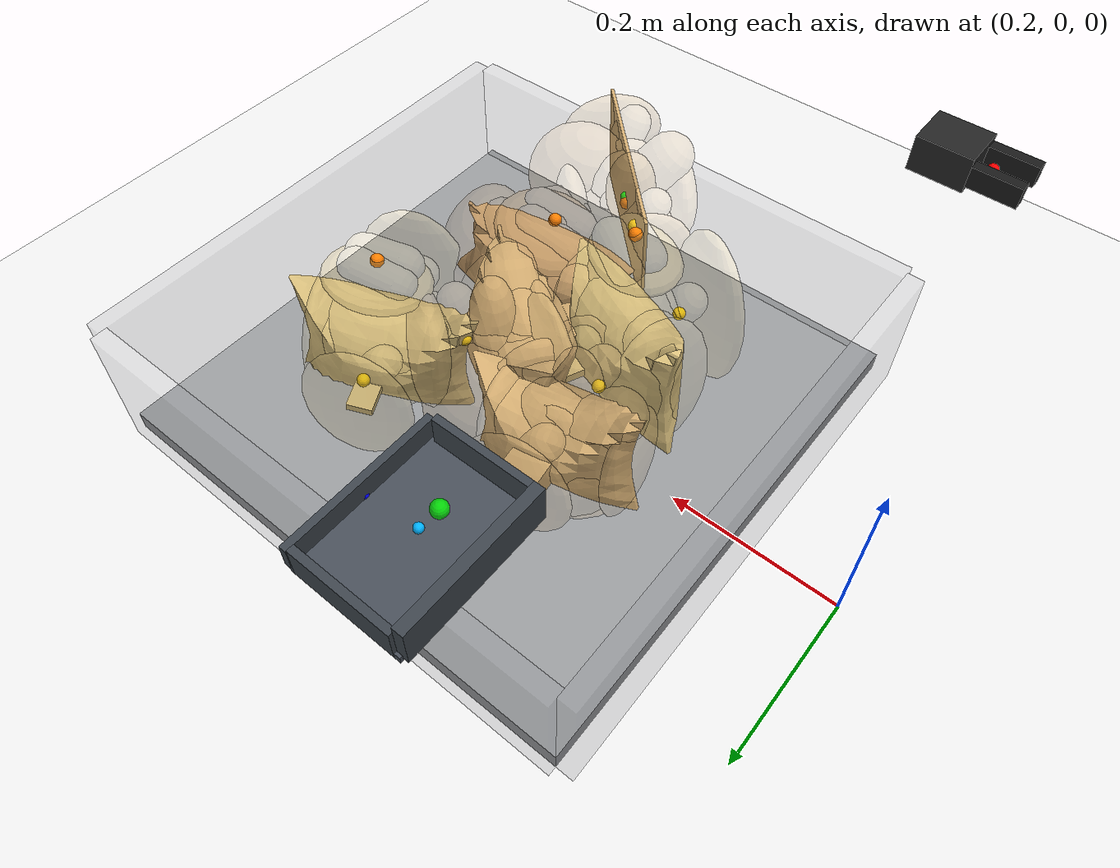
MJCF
<mujoco model="top_grasp_flat_scoop_drag_seed0">
  <compiler angle="radian" coordinate="local" inertiafromgeom="true" meshdir="D:/Michael/2025/01.Research/01.Parceldetection/16.Pybullet/bullet3-master (1)/bullet3-master/examples/pybullet/examples/DeformableTest/Sackcodex2/object"/>
  <option timestep="0.002" gravity="0 0 -9.81" integrator="implicitfast" iterations="100" tolerance="1e-8"/>
  <size memory="768M" nconmax="12000"/>

  <visual>
    <global azimuth="128" elevation="-20" offwidth="1280" offheight="720"/>
    <headlight ambient="0.34 0.34 0.34" diffuse="0.78 0.78 0.78" specular="0.15 0.15 0.15"/>
    <rgba haze="0.11 0.13 0.18 1"/>
  </visual>

  <default>
    <geom condim="4" friction="1.15 0.03 0.01" margin="0.003" solimp="0.93 0.98 0.003" solref="0.012 1"/>
    <joint damping="1.2" armature="0.002"/>
    <position kp="2500" forcelimited="true" forcerange="-420 420"/>
    <motor ctrllimited="true"/>
  </default>

  <asset>
    <mesh name="sack_0_visual_mesh" file="sack10.obj" scale="0.0723 0.0723 0.0728"/>
    <mesh name="sack_1_visual_mesh" file="sack6Apply.obj" scale="0.0713 0.0713 0.0750"/>
    <mesh name="sack_2_visual_mesh" file="sack9.obj" scale="0.0717 0.0717 0.0782"/>
    <mesh name="sack_3_visual_mesh" file="sack2.obj" scale="0.0706 0.0706 0.0711"/>
    <mesh name="sack_4_visual_mesh" file="sack10.obj" scale="0.0681 0.0681 0.0697"/>
    <mesh name="sack_5_visual_mesh" file="sack9.obj" scale="0.0733 0.0733 0.0804"/>
  </asset>

  <worldbody>
    <light name="key" pos="0.85 0.15 1.8" dir="-0.2 -0.1 -1" directional="true"/>
    <geom name="floor" type="plane" size="2 2 0.1" rgba="0.93 0.93 0.93 1"/>
    <geom name="work_pad" type="box" pos="0.62 0 0.012" size="0.30 0.30 0.012" rgba="0.60 0.61 0.62 1" friction="1.4 0.05 0.01"/>
    <geom name="corral_front" type="box" pos="0.93 0.00 0.08" size="0.010 0.30 0.08" rgba="0.55 0.55 0.58 0.22" friction="1.0 0.03 0.01"/>
    <geom name="corral_back" type="box" pos="0.31 0.00 0.08" size="0.010 0.30 0.08" rgba="0.55 0.55 0.58 0.18" friction="1.0 0.03 0.01"/>
    <geom name="corral_left" type="box" pos="0.62 0.30 0.08" size="0.30 0.010 0.08" rgba="0.55 0.55 0.58 0.14" friction="1.0 0.03 0.01"/>
    <geom name="corral_right" type="box" pos="0.62 -0.30 0.08" size="0.30 0.010 0.08" rgba="0.55 0.55 0.58 0.14" friction="1.0 0.03 0.01"/>
    <camera name="overview" pos="1.22 0.00 0.92" xyaxes="0 1 0 -0.46 0 0.88"/>

    <body name="gripper_mocap" mocap="true" pos="0.36 -0.33 0.30" quat="0.707107 0 -0.707107 0"/>
    <body name="scoop_mocap" mocap="true" pos="0.42 0.28 0.20" quat="1 0 0 0"/>

    <body name="gripper_ctrl_base" pos="0.36 -0.33 0.30">
      <inertial pos="0 0 0" mass="0.001" diaginertia="1e-6 1e-6 1e-6"/>
      <joint name="gripper_ctrl_x" type="slide" axis="1 0 0" limited="true" range="0.20 1.00"/>
      <body name="gripper_ctrl_y_body">
        <inertial pos="0 0 0" mass="0.001" diaginertia="1e-6 1e-6 1e-6"/>
        <joint name="gripper_ctrl_y" type="slide" axis="0 1 0" limited="true" range="-0.60 0.60"/>
        <body name="gripper_ctrl_z_body">
          <inertial pos="0 0 0" mass="0.001" diaginertia="1e-6 1e-6 1e-6"/>
          <joint name="gripper_ctrl_z" type="slide" axis="0 0 1" limited="true" range="0.04 0.70"/>
          <body name="gripper_ctrl_yaw_body">
            <inertial pos="0 0 0" mass="0.001" diaginertia="1e-6 1e-6 1e-6"/>
            <joint name="gripper_ctrl_yaw" type="hinge" axis="0 0 1" limited="true" range="-3.1416 3.1416"/>
            <body name="gripper_ctrl_pitch_body">
              <inertial pos="0 0 0" mass="0.001" diaginertia="1e-6 1e-6 1e-6"/>
              <joint name="gripper_ctrl_pitch" type="hinge" axis="0 1 0" limited="true" range="-3.1416 3.1416"/>
              <body name="gripper_ctrl_roll_body">
                <inertial pos="0 0 0" mass="0.001" diaginertia="1e-6 1e-6 1e-6"/>
                <joint name="gripper_ctrl_roll" type="hinge" axis="1 0 0" limited="true" range="-3.1416 3.1416"/>
              </body>
            </body>
          </body>
        </body>
      </body>
    </body>

    <body name="scoop_ctrl_base" pos="0.42 0.28 0.20">
      <inertial pos="0 0 0" mass="0.001" diaginertia="1e-6 1e-6 1e-6"/>
      <joint name="scoop_ctrl_x" type="slide" axis="1 0 0" limited="true" range="0.20 1.00"/>
      <body name="scoop_ctrl_y_body">
        <inertial pos="0 0 0" mass="0.001" diaginertia="1e-6 1e-6 1e-6"/>
        <joint name="scoop_ctrl_y" type="slide" axis="0 1 0" limited="true" range="-0.60 0.60"/>
        <body name="scoop_ctrl_z_body">
          <inertial pos="0 0 0" mass="0.001" diaginertia="1e-6 1e-6 1e-6"/>
          <joint name="scoop_ctrl_z" type="slide" axis="0 0 1" limited="true" range="0.04 0.70"/>
          <body name="scoop_ctrl_yaw_body">
            <inertial pos="0 0 0" mass="0.001" diaginertia="1e-6 1e-6 1e-6"/>
            <joint name="scoop_ctrl_yaw" type="hinge" axis="0 0 1" limited="true" range="-3.1416 3.1416"/>
            <body name="scoop_ctrl_pitch_body">
              <inertial pos="0 0 0" mass="0.001" diaginertia="1e-6 1e-6 1e-6"/>
              <joint name="scoop_ctrl_pitch" type="hinge" axis="0 1 0" limited="true" range="-3.1416 3.1416"/>
              <body name="scoop_ctrl_roll_body">
                <inertial pos="0 0 0" mass="0.001" diaginertia="1e-6 1e-6 1e-6"/>
                <joint name="scoop_ctrl_roll" type="hinge" axis="1 0 0" limited="true" range="-3.1416 3.1416"/>
              </body>
            </body>
          </body>
        </body>
      </body>
    </body>

    <body name="gripper_tool" pos="0.36 -0.33 0.30" quat="0.707107 0 -0.707107 0">
      <freejoint name="gripper_tool_free"/>
      <inertial pos="0 0 0.04" mass="0.08" diaginertia="0.0002 0.0002 0.0002"/>
      <geom name="gripper_palm" type="box" pos="0 0 0.030" size="0.020 0.026 0.030" rgba="0.14 0.14 0.14 1"/>
      <body name="left_finger_body" pos="0 0 0.072">
        <joint name="left_finger_slide" type="slide" axis="0 1 0" limited="true" range="0.010 0.040" damping="12"/>
        <geom name="left_finger_geom" type="box" pos="0 0.020 0" size="0.012 0.006 0.040" rgba="0.10 0.10 0.10 1" friction="2.2 0.05 0.01"/>
      </body>
      <body name="right_finger_body" pos="0 0 0.072">
        <joint name="right_finger_slide" type="slide" axis="0 -1 0" limited="true" range="0.010 0.040" damping="12"/>
        <geom name="right_finger_geom" type="box" pos="0 -0.020 0" size="0.012 0.006 0.040" rgba="0.10 0.10 0.10 1" friction="2.2 0.05 0.01"/>
      </body>
      <site name="gripper_pinch_site" pos="0 0 0.074" size="0.006" rgba="1 0 0 1"/>
    </body>

    <body name="scoop_tool" pos="0.42 0.28 0.20" quat="1 0 0 0">
      <freejoint name="scoop_tool_free"/>
      <inertial pos="0 0 0.02" mass="0.10" diaginertia="0.0003 0.0003 0.0003"/>
      <geom name="scoop_plate" type="box" pos="0.062 0 0" size="0.062 0.085 0.004" rgba="0.28 0.31 0.35 1" friction="1.7 0.05 0.01"/>
      <geom name="scoop_lip" type="box" pos="0.126 0 0.014" size="0.004 0.085 0.014" rgba="0.24 0.27 0.30 1" friction="1.7 0.05 0.01"/>
      <geom name="scoop_left_rail" type="box" pos="0.062 0.082 0.018" size="0.056 0.004 0.018" rgba="0.24 0.27 0.30 1"/>
      <geom name="scoop_right_rail" type="box" pos="0.062 -0.082 0.018" size="0.056 0.004 0.018" rgba="0.24 0.27 0.30 1"/>
      <geom name="scoop_backstop" type="box" pos="0.000 0 0.022" size="0.006 0.082 0.022" rgba="0.24 0.27 0.30 1"/>
      <site name="scoop_tip_site" pos="0.126 0 0.005" size="0.005" rgba="0 0 1 1"/>
      <site name="scoop_center_site" pos="0.060 0 0.020" size="0.005" rgba="0 0.7 1 1"/>
      <site name="score_overlay_site" pos="0.030 0 0.080" size="0.008" rgba="0 1 0 0.8"/>
    </body>

    <body name="sack_0" pos="0.6031 0.0117 0.1267" euler="0.0015 -0.1000 -0.5973">
      <freejoint name="sack_0_free"/>

      <geom name="sack_0_visual" type="mesh" mesh="sack_0_visual_mesh" rgba="0.820 0.670 0.440 0.92" contype="0" conaffinity="0"/>
      <site name="sack_0_center_site" pos="0 0 0.000" size="0.006" rgba="0 1 0 1"/>
      <site name="sack_0_top_site" pos="-0.0009 0.0060 -0.0016" size="0.007" rgba="1 0.5 0 1"/>
      <site name="sack_0_side_site" pos="-0.0022 0.0599 0.018" size="0.007" rgba="1 0.8 0 1"/>

      <geom name="sack_0_core_geom" type="ellipsoid" pos="0 0 0.0054" size="0.0446 0.0352 0.0622" mass="0.8153" rgba="0.820 0.670 0.440 0.12" friction="1.0 0.03 0.01"/>
      <geom name="sack_0_core_front" type="capsule" fromto="-0.0262 0 -0.0180 0.0478 0 0.0580" size="0.0279" mass="0.1941" rgba="0.820 0.670 0.440 0.10"/>
      <geom name="sack_0_core_left" type="capsule" fromto="-0.016 0.0383 -0.012 0.020 0.0644 0.054" size="0.0202" mass="0.3494" rgba="0.820 0.670 0.440 0.10"/>
      <geom name="sack_0_core_right" type="capsule" fromto="-0.016 -0.0383 -0.012 0.020 -0.0644 0.054" size="0.0181" mass="0.3494" rgba="0.820 0.670 0.440 0.10"/>

      <!-- 자루의 외형은 둥근 shell lobe로 보이게 하고, contact proxy는 반투명하게 숨긴다. -->
      <geom name="sack_0_shell_main_visual" type="ellipsoid" pos="-0.0011 0.0000 -0.0300" size="0.0677 0.0545 0.0874" rgba="0.820 0.670 0.440 0.16" contype="0" conaffinity="0"/>
      <geom name="sack_0_shell_left_visual" type="ellipsoid" pos="0.0040 0.0345 0.0020" size="0.0460 0.0259 0.0717" rgba="0.820 0.670 0.440 0.14" contype="0" conaffinity="0"/>
      <geom name="sack_0_shell_right_visual" type="ellipsoid" pos="0.0040 -0.0203 0.0000" size="0.0433 0.0185 0.0700" rgba="0.820 0.670 0.440 0.12" contype="0" conaffinity="0"/>
      <geom name="sack_0_top_left_crown_visual" type="capsule" fromto="-0.0212 0.0124 -0.0428 0.0212 0.0062 -0.0388" size="0.0204" rgba="0.820 0.670 0.440 0.14" contype="0" conaffinity="0"/>
      <geom name="sack_0_top_right_crown_visual" type="capsule" fromto="-0.0212 -0.0062 -0.0388 0.0212 -0.0124 -0.0428" size="0.0204" rgba="0.820 0.670 0.440 0.14" contype="0" conaffinity="0"/>

      <body name="sack_0_bottom_support_proxy_body" pos="-0.0004 0.0059 -0.0865">
        <joint name="sack_0_bottom_x" type="slide" axis="1 0 0" limited="true" range="-0.012 0.012" damping="18" stiffness="427.3"/>
        <joint name="sack_0_bottom_y" type="slide" axis="0 1 0" limited="true" range="-0.012 0.012" damping="18" stiffness="427.3"/>
        <joint name="sack_0_bottom_z" type="slide" axis="0 0 1" limited="true" range="-0.008 0.020" damping="24" stiffness="526.7"/>
        <geom name="sack_0_bottom_support_proxy" type="ellipsoid" size="0.0689 0.0545 0.0151" mass="0.1553" rgba="0.820 0.670 0.440 0.10" friction="1.55 0.05 0.01"/>
        <geom name="sack_0_bottom_deform_visual" type="ellipsoid" size="0.0734 0.0605 0.0196" rgba="0.820 0.670 0.440 0.22" contype="0" conaffinity="0"/>
      </body>

      <body name="sack_0_top_grasp_proxy_body" pos="-0.0022 0.0060 -0.0296">
        <joint name="sack_0_top_x" type="slide" axis="1 0 0" limited="true" range="-0.018 0.018" damping="12" stiffness="164.0"/>
        <joint name="sack_0_top_y" type="slide" axis="0 1 0" limited="true" range="-0.018 0.018" damping="12" stiffness="164.0"/>
        <joint name="sack_0_top_z" type="slide" axis="0 0 1" limited="true" range="-0.040 0.010" damping="14" stiffness="119.1"/>
        <geom name="sack_0_top_grasp_proxy" type="ellipsoid" size="0.0529 0.0345 0.0326" mass="0.1165" rgba="0.820 0.670 0.440 0.10" friction="2.2 0.05 0.01"/>
        <geom name="sack_0_top_deform_visual" type="ellipsoid" size="0.0550 0.0372 0.0411" rgba="0.820 0.670 0.440 0.36" contype="0" conaffinity="0"/>
        <geom name="sack_0_top_fold_left_visual" type="capsule" fromto="-0.0254 0.0097 0.000 0.0053 0.0028 0.0237" size="0.0147" rgba="0.820 0.670 0.440 0.26" contype="0" conaffinity="0"/>
        <geom name="sack_0_top_fold_right_visual" type="capsule" fromto="-0.0063 -0.0028 0.0237 0.0254 -0.0097 0.000" size="0.0147" rgba="0.820 0.670 0.440 0.26" contype="0" conaffinity="0"/>
      </body>

      <body name="sack_0_left_side_proxy_body" pos="-0.0004 0.0989 0.010">
        <joint name="sack_0_left_side_slide" type="slide" axis="0 -1 0" limited="true" range="-0.028 0.016" damping="16" stiffness="206.3"/>
        <geom name="sack_0_left_side_proxy" type="ellipsoid" size="0.0589 0.0201 0.0785" mass="0.1165" rgba="0.820 0.670 0.440 0.08" friction="1.25 0.04 0.01"/>
        <geom name="sack_0_left_side_deform_visual" type="ellipsoid" size="0.0607 0.0217 0.0801" rgba="0.820 0.670 0.440 0.24" contype="0" conaffinity="0"/>
      </body>

      <body name="sack_0_right_side_proxy_body" pos="-0.0004 -0.0848 0.010">
        <joint name="sack_0_right_side_slide" type="slide" axis="0 1 0" limited="true" range="-0.028 0.016" damping="16" stiffness="191.4"/>
        <geom name="sack_0_right_side_proxy" type="ellipsoid" size="0.0566 0.0157 0.0769" mass="0.1165" rgba="0.820 0.670 0.440 0.08" friction="1.25 0.04 0.01"/>
        <geom name="sack_0_right_side_deform_visual" type="ellipsoid" size="0.0583 0.0173 0.0785" rgba="0.820 0.670 0.440 0.24" contype="0" conaffinity="0"/>
      </body>

      <body name="sack_0_front_proxy_body" pos="0.0607 0.0000 0.000">
        <joint name="sack_0_front_slide" type="slide" axis="-1 0 0" limited="true" range="-0.022 0.012" damping="15" stiffness="203.7"/>
        <geom name="sack_0_front_support_proxy" type="ellipsoid" size="0.0194 0.0525 0.0745" mass="0.0971" rgba="0.820 0.670 0.440 0.08" friction="1.20 0.04 0.01"/>
        <geom name="sack_0_front_deform_visual" type="ellipsoid" size="0.0198 0.0535 0.0760" rgba="0.820 0.670 0.440 0.20" contype="0" conaffinity="0"/>
      </body>

      <body name="sack_0_back_proxy_body" pos="-0.0638 0.0000 0.000">
        <joint name="sack_0_back_slide" type="slide" axis="1 0 0" limited="true" range="-0.022 0.012" damping="15" stiffness="188.8"/>
        <geom name="sack_0_back_support_proxy" type="ellipsoid" size="0.0179 0.0525 0.0745" mass="0.0971" rgba="0.820 0.670 0.440 0.08" friction="1.20 0.04 0.01"/>
        <geom name="sack_0_back_deform_visual" type="ellipsoid" size="0.0186 0.0535 0.0760" rgba="0.820 0.670 0.440 0.20" contype="0" conaffinity="0"/>
      </body>

      <body name="sack_0_shape_proxy_body" pos="-0.0013 0.0321 0.0448">
        <joint name="sack_0_bulge_y" type="slide" axis="0 1 0" limited="true" range="-0.020 0.020" damping="8" stiffness="121.8"/>
        <joint name="sack_0_bulge_z" type="slide" axis="0 0 1" limited="true" range="-0.014 0.028" damping="8" stiffness="116.3"/>
        <geom name="sack_0_shape_proxy" type="ellipsoid" size="0.0242 0.0204 0.0486" mass="0.0777" rgba="0.820 0.670 0.440 0.10"/>
        <geom name="sack_0_shape_deform_visual" type="ellipsoid" size="0.0283 0.0245 0.0571" rgba="0.820 0.670 0.440 0.32" contype="0" conaffinity="0"/>
      </body>
    </body>

    <body name="sack_1" pos="0.6619 -0.0948 0.1107" euler="-0.1181 -0.3166 0.3300">
      <freejoint name="sack_1_free"/>

      <geom name="sack_1_visual" type="mesh" mesh="sack_1_visual_mesh" rgba="0.760 0.600 0.400 0.92" contype="0" conaffinity="0"/>
      <site name="sack_1_center_site" pos="0 0 0.000" size="0.006" rgba="0 1 0 1"/>
      <site name="sack_1_top_site" pos="0.0018 0.0051 0.1143" size="0.007" rgba="1 0.5 0 1"/>
      <site name="sack_1_side_site" pos="0.0046 0.0992 0.018" size="0.007" rgba="1 0.8 0 1"/>

      <geom name="sack_1_core_geom" type="ellipsoid" pos="0 0 0.0058" size="0.0437 0.0349 0.0757" mass="0.8516" rgba="0.760 0.600 0.400 0.12" friction="1.0 0.03 0.01"/>
      <geom name="sack_1_core_front" type="capsule" fromto="-0.0194 0 -0.0180 0.0546 0 0.0580" size="0.0294" mass="0.2028" rgba="0.760 0.600 0.400 0.10"/>
      <geom name="sack_1_core_left" type="capsule" fromto="-0.016 0.0688 -0.012 0.020 0.1341 0.054" size="0.0211" mass="0.3650" rgba="0.760 0.600 0.400 0.10"/>
      <geom name="sack_1_core_right" type="capsule" fromto="-0.016 -0.0688 -0.012 0.020 -0.1341 0.054" size="0.0188" mass="0.3650" rgba="0.760 0.600 0.400 0.10"/>

      <!-- 자루의 외형은 둥근 shell lobe로 보이게 하고, contact proxy는 반투명하게 숨긴다. -->
      <geom name="sack_1_shell_main_visual" type="ellipsoid" pos="0.0023 -0.0015 -0.0052" size="0.0721 0.0660 0.0890" rgba="0.760 0.600 0.400 0.16" contype="0" conaffinity="0"/>
      <geom name="sack_1_shell_left_visual" type="ellipsoid" pos="0.0040 0.1011 0.0020" size="0.0490 0.0738 0.0730" rgba="0.760 0.600 0.400 0.14" contype="0" conaffinity="0"/>
      <geom name="sack_1_shell_right_visual" type="ellipsoid" pos="0.0040 -0.0538 0.0000" size="0.0461 0.0403 0.0712" rgba="0.760 0.600 0.400 0.12" contype="0" conaffinity="0"/>
      <geom name="sack_1_top_left_crown_visual" type="capsule" fromto="-0.0230 0.0172 0.0926 0.0230 0.0086 0.0966" size="0.0207" rgba="0.760 0.600 0.400 0.14" contype="0" conaffinity="0"/>
      <geom name="sack_1_top_right_crown_visual" type="capsule" fromto="-0.0230 -0.0086 0.0966 0.0230 -0.0172 0.0926" size="0.0207" rgba="0.760 0.600 0.400 0.14" contype="0" conaffinity="0"/>

      <body name="sack_1_bottom_support_proxy_body" pos="0.0008 -0.0105 -0.0879">
        <joint name="sack_1_bottom_x" type="slide" axis="1 0 0" limited="true" range="-0.012 0.012" damping="18" stiffness="472.3"/>
        <joint name="sack_1_bottom_y" type="slide" axis="0 1 0" limited="true" range="-0.012 0.012" damping="18" stiffness="472.3"/>
        <joint name="sack_1_bottom_z" type="slide" axis="0 0 1" limited="true" range="-0.008 0.020" damping="24" stiffness="581.7"/>
        <geom name="sack_1_bottom_support_proxy" type="ellipsoid" size="0.0731 0.0676 0.0136" mass="0.1622" rgba="0.760 0.600 0.400 0.10" friction="1.55 0.05 0.01"/>
        <geom name="sack_1_bottom_deform_visual" type="ellipsoid" size="0.0779 0.0736 0.0177" rgba="0.760 0.600 0.400 0.22" contype="0" conaffinity="0"/>
      </body>

      <body name="sack_1_top_grasp_proxy_body" pos="0.0046 0.0049 0.0863">
        <joint name="sack_1_top_x" type="slide" axis="1 0 0" limited="true" range="-0.018 0.018" damping="12" stiffness="181.5"/>
        <joint name="sack_1_top_y" type="slide" axis="0 1 0" limited="true" range="-0.018 0.018" damping="12" stiffness="181.5"/>
        <joint name="sack_1_top_z" type="slide" axis="0 0 1" limited="true" range="-0.040 0.010" damping="14" stiffness="134.1"/>
        <geom name="sack_1_top_grasp_proxy" type="ellipsoid" size="0.0575 0.0476 0.0166" mass="0.1217" rgba="0.760 0.600 0.400 0.10" friction="2.2 0.05 0.01"/>
        <geom name="sack_1_top_deform_visual" type="ellipsoid" size="0.0598 0.0515 0.0216" rgba="0.760 0.600 0.400 0.36" contype="0" conaffinity="0"/>
        <geom name="sack_1_top_fold_left_visual" type="capsule" fromto="-0.0276 0.0133 0.000 0.0057 0.0038 0.0131" size="0.0149" rgba="0.760 0.600 0.400 0.26" contype="0" conaffinity="0"/>
        <geom name="sack_1_top_fold_right_visual" type="capsule" fromto="-0.0069 -0.0038 0.0131 0.0276 -0.0133 0.000" size="0.0149" rgba="0.760 0.600 0.400 0.26" contype="0" conaffinity="0"/>
      </body>

      <body name="sack_1_left_side_proxy_body" pos="0.0007 0.1787 0.010">
        <joint name="sack_1_left_side_slide" type="slide" axis="0 -1 0" limited="true" range="-0.028 0.016" damping="16" stiffness="237.6"/>
        <geom name="sack_1_left_side_proxy" type="ellipsoid" size="0.0635 0.0593 0.0799" mass="0.1217" rgba="0.760 0.600 0.400 0.08" friction="1.25 0.04 0.01"/>
        <geom name="sack_1_left_side_deform_visual" type="ellipsoid" size="0.0654 0.0641 0.0815" rgba="0.760 0.600 0.400 0.24" contype="0" conaffinity="0"/>
      </body>

      <body name="sack_1_right_side_proxy_body" pos="0.0007 -0.1314 0.010">
        <joint name="sack_1_right_side_slide" type="slide" axis="0 1 0" limited="true" range="-0.028 0.016" damping="16" stiffness="220.2"/>
        <geom name="sack_1_right_side_proxy" type="ellipsoid" size="0.0609 0.0463 0.0783" mass="0.1217" rgba="0.760 0.600 0.400 0.08" friction="1.25 0.04 0.01"/>
        <geom name="sack_1_right_side_deform_visual" type="ellipsoid" size="0.0628 0.0510 0.0799" rgba="0.760 0.600 0.400 0.24" contype="0" conaffinity="0"/>
      </body>

      <body name="sack_1_front_proxy_body" pos="0.0721 -0.0005 0.000">
        <joint name="sack_1_front_slide" type="slide" axis="-1 0 0" limited="true" range="-0.022 0.012" damping="15" stiffness="226.2"/>
        <geom name="sack_1_front_support_proxy" type="ellipsoid" size="0.0455 0.0656 0.0759" mass="0.1014" rgba="0.760 0.600 0.400 0.08" friction="1.20 0.04 0.01"/>
        <geom name="sack_1_front_deform_visual" type="ellipsoid" size="0.0464 0.0670 0.0775" rgba="0.760 0.600 0.400 0.20" contype="0" conaffinity="0"/>
      </body>

      <body name="sack_1_back_proxy_body" pos="-0.0656 -0.0005 0.000">
        <joint name="sack_1_back_slide" type="slide" axis="1 0 0" limited="true" range="-0.022 0.012" damping="15" stiffness="208.8"/>
        <geom name="sack_1_back_support_proxy" type="ellipsoid" size="0.0419 0.0656 0.0759" mass="0.1014" rgba="0.760 0.600 0.400 0.08" friction="1.20 0.04 0.01"/>
        <geom name="sack_1_back_deform_visual" type="ellipsoid" size="0.0437 0.0670 0.0775" rgba="0.760 0.600 0.400 0.20" contype="0" conaffinity="0"/>
      </body>

      <body name="sack_1_shape_proxy_body" pos="0.0028 0.1179 0.0318">
        <joint name="sack_1_bulge_y" type="slide" axis="0 1 0" limited="true" range="-0.020 0.020" damping="8" stiffness="91.8"/>
        <joint name="sack_1_bulge_z" type="slide" axis="0 0 1" limited="true" range="-0.014 0.028" damping="8" stiffness="93.8"/>
        <geom name="sack_1_shape_proxy" type="ellipsoid" size="0.0253 0.0225 0.0326" mass="0.0811" rgba="0.760 0.600 0.400 0.10"/>
        <geom name="sack_1_shape_deform_visual" type="ellipsoid" size="0.0296 0.0269 0.0376" rgba="0.760 0.600 0.400 0.32" contype="0" conaffinity="0"/>
      </body>
    </body>

    <body name="sack_2" pos="0.5145 -0.0584 0.1161" euler="0.0118 0.0476 2.7196">
      <freejoint name="sack_2_free"/>

      <geom name="sack_2_visual" type="mesh" mesh="sack_2_visual_mesh" rgba="0.840 0.740 0.480 0.92" contype="0" conaffinity="0"/>
      <site name="sack_2_center_site" pos="0 0 0.000" size="0.006" rgba="0 1 0 1"/>
      <site name="sack_2_top_site" pos="0.0004 0.0061 0.1529" size="0.007" rgba="1 0.5 0 1"/>
      <site name="sack_2_side_site" pos="0.0011 0.0645 0.018" size="0.007" rgba="1 0.8 0 1"/>

      <geom name="sack_2_core_geom" type="ellipsoid" pos="0 0 0.0059" size="0.0517 0.0438 0.0895" mass="0.9891" rgba="0.840 0.740 0.480 0.12" friction="1.0 0.03 0.01"/>
      <geom name="sack_2_core_front" type="capsule" fromto="-0.0229 0 -0.0180 0.0511 0 0.0580" size="0.0307" mass="0.2355" rgba="0.840 0.740 0.480 0.10"/>
      <geom name="sack_2_core_left" type="capsule" fromto="-0.016 0.0370 -0.012 0.020 0.0613 0.054" size="0.0201" mass="0.4239" rgba="0.840 0.740 0.480 0.10"/>
      <geom name="sack_2_core_right" type="capsule" fromto="-0.016 -0.0370 -0.012 0.020 -0.0613 0.054" size="0.0181" mass="0.4239" rgba="0.840 0.740 0.480 0.10"/>

      <!-- 자루의 외형은 둥근 shell lobe로 보이게 하고, contact proxy는 반투명하게 숨긴다. -->
      <geom name="sack_2_shell_main_visual" type="ellipsoid" pos="0.0005 0.0001 -0.0006" size="0.0687 0.0587 0.1034" rgba="0.840 0.740 0.480 0.16" contype="0" conaffinity="0"/>
      <geom name="sack_2_shell_left_visual" type="ellipsoid" pos="0.0040 0.0315 0.0020" size="0.0467 0.0238 0.0848" rgba="0.840 0.740 0.480 0.14" contype="0" conaffinity="0"/>
      <geom name="sack_2_shell_right_visual" type="ellipsoid" pos="0.0040 -0.0188 0.0000" size="0.0440 0.0175 0.0828" rgba="0.840 0.740 0.480 0.12" contype="0" conaffinity="0"/>
      <geom name="sack_2_top_left_crown_visual" type="capsule" fromto="-0.0219 0.0145 0.1348 0.0219 0.0072 0.1388" size="0.0196" rgba="0.840 0.740 0.480 0.14" contype="0" conaffinity="0"/>
      <geom name="sack_2_top_right_crown_visual" type="capsule" fromto="-0.0219 -0.0072 0.1388 0.0219 -0.0145 0.1348" size="0.0196" rgba="0.840 0.740 0.480 0.14" contype="0" conaffinity="0"/>

      <body name="sack_2_bottom_support_proxy_body" pos="0.0002 -0.0058 -0.1061">
        <joint name="sack_2_bottom_x" type="slide" axis="1 0 0" limited="true" range="-0.012 0.012" damping="18" stiffness="510.0"/>
        <joint name="sack_2_bottom_y" type="slide" axis="0 1 0" limited="true" range="-0.012 0.012" damping="18" stiffness="510.0"/>
        <joint name="sack_2_bottom_z" type="slide" axis="0 0 1" limited="true" range="-0.008 0.020" damping="24" stiffness="627.7"/>
        <geom name="sack_2_bottom_support_proxy" type="ellipsoid" size="0.0705 0.0603 0.0123" mass="0.1884" rgba="0.840 0.740 0.480 0.10" friction="1.55 0.05 0.01"/>
        <geom name="sack_2_bottom_deform_visual" type="ellipsoid" size="0.0751 0.0663 0.0160" rgba="0.840 0.740 0.480 0.22" contype="0" conaffinity="0"/>
      </body>

      <body name="sack_2_top_grasp_proxy_body" pos="0.0011 0.0061 0.1249">
        <joint name="sack_2_top_x" type="slide" axis="1 0 0" limited="true" range="-0.018 0.018" damping="12" stiffness="196.1"/>
        <joint name="sack_2_top_y" type="slide" axis="0 1 0" limited="true" range="-0.018 0.018" damping="12" stiffness="196.1"/>
        <joint name="sack_2_top_z" type="slide" axis="0 0 1" limited="true" range="-0.040 0.010" damping="14" stiffness="146.7"/>
        <geom name="sack_2_top_grasp_proxy" type="ellipsoid" size="0.0546 0.0403 0.0137" mass="0.1413" rgba="0.840 0.740 0.480 0.10" friction="2.2 0.05 0.01"/>
        <geom name="sack_2_top_deform_visual" type="ellipsoid" size="0.0568 0.0435 0.0180" rgba="0.840 0.740 0.480 0.36" contype="0" conaffinity="0"/>
        <geom name="sack_2_top_fold_left_visual" type="capsule" fromto="-0.0262 0.0113 0.000 0.0055 0.0032 0.0111" size="0.0141" rgba="0.840 0.740 0.480 0.26" contype="0" conaffinity="0"/>
        <geom name="sack_2_top_fold_right_visual" type="capsule" fromto="-0.0066 -0.0032 0.0111 0.0262 -0.0113 0.000" size="0.0141" rgba="0.840 0.740 0.480 0.26" contype="0" conaffinity="0"/>
      </body>

      <body name="sack_2_left_side_proxy_body" pos="0.0002 0.1018 0.010">
        <joint name="sack_2_left_side_slide" type="slide" axis="0 -1 0" limited="true" range="-0.028 0.016" damping="16" stiffness="263.1"/>
        <geom name="sack_2_left_side_proxy" type="ellipsoid" size="0.0606 0.0184 0.0981" mass="0.1413" rgba="0.840 0.740 0.480 0.08" friction="1.25 0.04 0.01"/>
        <geom name="sack_2_left_side_deform_visual" type="ellipsoid" size="0.0624 0.0198 0.1001" rgba="0.840 0.740 0.480 0.24" contype="0" conaffinity="0"/>
      </body>

      <body name="sack_2_right_side_proxy_body" pos="0.0002 -0.0890 0.010">
        <joint name="sack_2_right_side_slide" type="slide" axis="0 1 0" limited="true" range="-0.028 0.016" damping="16" stiffness="243.6"/>
        <geom name="sack_2_right_side_proxy" type="ellipsoid" size="0.0582 0.0143 0.0962" mass="0.1413" rgba="0.840 0.740 0.480 0.08" friction="1.25 0.04 0.01"/>
        <geom name="sack_2_right_side_deform_visual" type="ellipsoid" size="0.0600 0.0158 0.0981" rgba="0.840 0.740 0.480 0.24" contype="0" conaffinity="0"/>
      </body>

      <body name="sack_2_front_proxy_body" pos="0.0657 0.0000 0.000">
        <joint name="sack_2_front_slide" type="slide" axis="-1 0 0" limited="true" range="-0.022 0.012" damping="15" stiffness="245.0"/>
        <geom name="sack_2_front_support_proxy" type="ellipsoid" size="0.0182 0.0583 0.0941" mass="0.1177" rgba="0.840 0.740 0.480 0.08" friction="1.20 0.04 0.01"/>
        <geom name="sack_2_front_deform_visual" type="ellipsoid" size="0.0186 0.0594 0.0960" rgba="0.840 0.740 0.480 0.20" contype="0" conaffinity="0"/>
      </body>

      <body name="sack_2_back_proxy_body" pos="-0.0642 0.0000 0.000">
        <joint name="sack_2_back_slide" type="slide" axis="1 0 0" limited="true" range="-0.022 0.012" damping="15" stiffness="225.5"/>
        <geom name="sack_2_back_support_proxy" type="ellipsoid" size="0.0168 0.0583 0.0941" mass="0.1177" rgba="0.840 0.740 0.480 0.08" friction="1.20 0.04 0.01"/>
        <geom name="sack_2_back_deform_visual" type="ellipsoid" size="0.0175 0.0594 0.0960" rgba="0.840 0.740 0.480 0.20" contype="0" conaffinity="0"/>
      </body>

      <body name="sack_2_shape_proxy_body" pos="0.0006 0.0282 0.0209">
        <joint name="sack_2_bulge_y" type="slide" axis="0 1 0" limited="true" range="-0.020 0.020" damping="8" stiffness="66.7"/>
        <joint name="sack_2_bulge_z" type="slide" axis="0 0 1" limited="true" range="-0.014 0.028" damping="8" stiffness="75.0"/>
        <geom name="sack_2_shape_proxy" type="ellipsoid" size="0.0242 0.0203 0.0297" mass="0.0942" rgba="0.840 0.740 0.480 0.10"/>
        <geom name="sack_2_shape_deform_visual" type="ellipsoid" size="0.0282 0.0244 0.0340" rgba="0.840 0.740 0.480 0.32" contype="0" conaffinity="0"/>
      </body>
    </body>

    <body name="sack_3" pos="0.6337 -0.2162 0.1512" euler="-0.1246 -0.0490 -2.3234">
      <freejoint name="sack_3_free"/>

      <geom name="sack_3_visual" type="mesh" mesh="sack_3_visual_mesh" rgba="0.820 0.670 0.440 0.92" contype="0" conaffinity="0"/>
      <site name="sack_3_center_site" pos="0 0 0.000" size="0.006" rgba="0 1 0 1"/>
      <site name="sack_3_top_site" pos="-0.0004 -0.0066 -0.0030" size="0.007" rgba="1 0.5 0 1"/>
      <site name="sack_3_side_site" pos="-0.0011 -0.0592 0.018" size="0.007" rgba="1 0.8 0 1"/>

      <geom name="sack_3_core_geom" type="ellipsoid" pos="0 0 0.0055" size="0.0445 0.0351 0.0621" mass="0.7015" rgba="0.820 0.670 0.440 0.12" friction="1.0 0.03 0.01"/>
      <geom name="sack_3_core_front" type="capsule" fromto="-0.0251 0 -0.0180 0.0489 0 0.0580" size="0.0279" mass="0.1670" rgba="0.820 0.670 0.440 0.10"/>
      <geom name="sack_3_core_left" type="capsule" fromto="-0.016 0.0377 -0.012 0.020 0.0630 0.054" size="0.0202" mass="0.3007" rgba="0.820 0.670 0.440 0.10"/>
      <geom name="sack_3_core_right" type="capsule" fromto="-0.016 -0.0377 -0.012 0.020 -0.0630 0.054" size="0.0181" mass="0.3007" rgba="0.820 0.670 0.440 0.10"/>

      <!-- 자루의 외형은 둥근 shell lobe로 보이게 하고, contact proxy는 반투명하게 숨긴다. -->
      <geom name="sack_3_shell_main_visual" type="ellipsoid" pos="-0.0005 -0.0010 -0.0279" size="0.0677 0.0544 0.0681" rgba="0.820 0.670 0.440 0.16" contype="0" conaffinity="0"/>
      <geom name="sack_3_shell_left_visual" type="ellipsoid" pos="0.0040 0.0309 0.0020" size="0.0460 0.0249 0.0559" rgba="0.820 0.670 0.440 0.14" contype="0" conaffinity="0"/>
      <geom name="sack_3_shell_right_visual" type="ellipsoid" pos="0.0040 -0.0218 0.0000" size="0.0433 0.0181 0.0545" rgba="0.820 0.670 0.440 0.12" contype="0" conaffinity="0"/>
      <geom name="sack_3_top_left_crown_visual" type="capsule" fromto="-0.0212 0.0124 -0.0424 0.0212 0.0062 -0.0384" size="0.0204" rgba="0.820 0.670 0.440 0.14" contype="0" conaffinity="0"/>
      <geom name="sack_3_top_right_crown_visual" type="capsule" fromto="-0.0212 -0.0062 -0.0384 0.0212 -0.0124 -0.0424" size="0.0204" rgba="0.820 0.670 0.440 0.14" contype="0" conaffinity="0"/>

      <body name="sack_3_bottom_support_proxy_body" pos="-0.0002 0.0154 -0.0639">
        <joint name="sack_3_bottom_x" type="slide" axis="1 0 0" limited="true" range="-0.012 0.012" damping="18" stiffness="426.6"/>
        <joint name="sack_3_bottom_y" type="slide" axis="0 1 0" limited="true" range="-0.012 0.012" damping="18" stiffness="426.6"/>
        <joint name="sack_3_bottom_z" type="slide" axis="0 0 1" limited="true" range="-0.008 0.020" damping="24" stiffness="525.9"/>
        <geom name="sack_3_bottom_support_proxy" type="ellipsoid" size="0.0689 0.0544 0.0151" mass="0.1336" rgba="0.820 0.670 0.440 0.10" friction="1.55 0.05 0.01"/>
        <geom name="sack_3_bottom_deform_visual" type="ellipsoid" size="0.0734 0.0604 0.0196" rgba="0.820 0.670 0.440 0.22" contype="0" conaffinity="0"/>
      </body>

      <body name="sack_3_top_grasp_proxy_body" pos="-0.0011 -0.0067 -0.0310">
        <joint name="sack_3_top_x" type="slide" axis="1 0 0" limited="true" range="-0.018 0.018" damping="12" stiffness="163.7"/>
        <joint name="sack_3_top_y" type="slide" axis="0 1 0" limited="true" range="-0.018 0.018" damping="12" stiffness="163.7"/>
        <joint name="sack_3_top_z" type="slide" axis="0 0 1" limited="true" range="-0.040 0.010" damping="14" stiffness="118.9"/>
        <geom name="sack_3_top_grasp_proxy" type="ellipsoid" size="0.0529 0.0344 0.0312" mass="0.1002" rgba="0.820 0.670 0.440 0.10" friction="2.2 0.05 0.01"/>
        <geom name="sack_3_top_deform_visual" type="ellipsoid" size="0.0550 0.0371 0.0395" rgba="0.820 0.670 0.440 0.36" contype="0" conaffinity="0"/>
        <geom name="sack_3_top_fold_left_visual" type="capsule" fromto="-0.0254 0.0096 0.000 0.0053 0.0027 0.0228" size="0.0147" rgba="0.820 0.670 0.440 0.26" contype="0" conaffinity="0"/>
        <geom name="sack_3_top_fold_right_visual" type="capsule" fromto="-0.0063 -0.0027 0.0228 0.0254 -0.0096 0.000" size="0.0147" rgba="0.820 0.670 0.440 0.26" contype="0" conaffinity="0"/>
      </body>

      <body name="sack_3_left_side_proxy_body" pos="-0.0002 0.0952 0.010">
        <joint name="sack_3_left_side_slide" type="slide" axis="0 -1 0" limited="true" range="-0.028 0.016" damping="16" stiffness="205.9"/>
        <geom name="sack_3_left_side_proxy" type="ellipsoid" size="0.0589 0.0193 0.0559" mass="0.1002" rgba="0.820 0.670 0.440 0.08" friction="1.25 0.04 0.01"/>
        <geom name="sack_3_left_side_deform_visual" type="ellipsoid" size="0.0607 0.0208 0.0570" rgba="0.820 0.670 0.440 0.24" contype="0" conaffinity="0"/>
      </body>

      <body name="sack_3_right_side_proxy_body" pos="-0.0002 -0.0861 0.010">
        <joint name="sack_3_right_side_slide" type="slide" axis="0 1 0" limited="true" range="-0.028 0.016" damping="16" stiffness="191.1"/>
        <geom name="sack_3_right_side_proxy" type="ellipsoid" size="0.0565 0.0151 0.0548" mass="0.1002" rgba="0.820 0.670 0.440 0.08" friction="1.25 0.04 0.01"/>
        <geom name="sack_3_right_side_deform_visual" type="ellipsoid" size="0.0583 0.0166 0.0559" rgba="0.820 0.670 0.440 0.24" contype="0" conaffinity="0"/>
      </body>

      <body name="sack_3_front_proxy_body" pos="0.0618 -0.0003 0.000">
        <joint name="sack_3_front_slide" type="slide" axis="-1 0 0" limited="true" range="-0.022 0.012" damping="15" stiffness="203.3"/>
        <geom name="sack_3_front_support_proxy" type="ellipsoid" size="0.0189 0.0524 0.0519" mass="0.0835" rgba="0.820 0.670 0.440 0.08" friction="1.20 0.04 0.01"/>
        <geom name="sack_3_front_deform_visual" type="ellipsoid" size="0.0192 0.0534 0.0529" rgba="0.820 0.670 0.440 0.20" contype="0" conaffinity="0"/>
      </body>

      <body name="sack_3_back_proxy_body" pos="-0.0633 -0.0003 0.000">
        <joint name="sack_3_back_slide" type="slide" axis="1 0 0" limited="true" range="-0.022 0.012" damping="15" stiffness="188.5"/>
        <geom name="sack_3_back_support_proxy" type="ellipsoid" size="0.0174 0.0524 0.0519" mass="0.0835" rgba="0.820 0.670 0.440 0.08" friction="1.20 0.04 0.01"/>
        <geom name="sack_3_back_deform_visual" type="ellipsoid" size="0.0181 0.0534 0.0529" rgba="0.820 0.670 0.440 0.20" contype="0" conaffinity="0"/>
      </body>

      <body name="sack_3_shape_proxy_body" pos="-0.0007 -0.0311 0.0450">
        <joint name="sack_3_bulge_y" type="slide" axis="0 1 0" limited="true" range="-0.020 0.020" damping="8" stiffness="122.3"/>
        <joint name="sack_3_bulge_z" type="slide" axis="0 0 1" limited="true" range="-0.014 0.028" damping="8" stiffness="116.7"/>
        <geom name="sack_3_shape_proxy" type="ellipsoid" size="0.0242 0.0204 0.0472" mass="0.0668" rgba="0.820 0.670 0.440 0.10"/>
        <geom name="sack_3_shape_deform_visual" type="ellipsoid" size="0.0282 0.0245 0.0555" rgba="0.820 0.670 0.440 0.32" contype="0" conaffinity="0"/>
      </body>
    </body>

    <body name="sack_4" pos="0.4990 0.0768 0.1193" euler="0.0583 0.0544 -2.9739">
      <freejoint name="sack_4_free"/>

      <geom name="sack_4_visual" type="mesh" mesh="sack_4_visual_mesh" rgba="0.820 0.670 0.440 0.92" contype="0" conaffinity="0"/>
      <site name="sack_4_center_site" pos="0 0 0.000" size="0.006" rgba="0 1 0 1"/>
      <site name="sack_4_top_site" pos="0.0061 0.0063 -0.0059" size="0.007" rgba="1 0.5 0 1"/>
      <site name="sack_4_side_site" pos="0.0152 0.0584 0.018" size="0.007" rgba="1 0.8 0 1"/>

      <geom name="sack_4_core_geom" type="ellipsoid" pos="0 0 0.0054" size="0.0450 0.0358 0.0631" mass="0.6411" rgba="0.820 0.670 0.440 0.12" friction="1.0 0.03 0.01"/>
      <geom name="sack_4_core_front" type="capsule" fromto="-0.0088 0 -0.0180 0.0652 0 0.0580" size="0.0285" mass="0.1526" rgba="0.820 0.670 0.440 0.10"/>
      <geom name="sack_4_core_left" type="capsule" fromto="-0.016 0.0350 -0.012 0.020 0.0568 0.054" size="0.0201" mass="0.2747" rgba="0.820 0.670 0.440 0.10"/>
      <geom name="sack_4_core_right" type="capsule" fromto="-0.016 -0.0350 -0.012 0.020 -0.0568 0.054" size="0.0181" mass="0.2747" rgba="0.820 0.670 0.440 0.10"/>

      <!-- 자루의 외형은 둥근 shell lobe로 보이게 하고, contact proxy는 반투명하게 숨긴다. -->
      <geom name="sack_4_shell_main_visual" type="ellipsoid" pos="0.0076 0.0005 -0.0307" size="0.0682 0.0556 0.0747" rgba="0.820 0.670 0.440 0.16" contype="0" conaffinity="0"/>
      <geom name="sack_4_shell_left_visual" type="ellipsoid" pos="0.0040 0.0278 0.0020" size="0.0464 0.0207 0.0613" rgba="0.820 0.670 0.440 0.14" contype="0" conaffinity="0"/>
      <geom name="sack_4_shell_right_visual" type="ellipsoid" pos="0.0040 -0.0160 0.0000" size="0.0436 0.0161 0.0598" rgba="0.820 0.670 0.440 0.12" contype="0" conaffinity="0"/>
      <geom name="sack_4_top_left_crown_visual" type="capsule" fromto="-0.0214 0.0129 -0.0476 0.0214 0.0065 -0.0436" size="0.0204" rgba="0.820 0.670 0.440 0.14" contype="0" conaffinity="0"/>
      <geom name="sack_4_top_right_crown_visual" type="capsule" fromto="-0.0214 -0.0065 -0.0436 0.0214 -0.0129 -0.0476" size="0.0204" rgba="0.820 0.670 0.440 0.14" contype="0" conaffinity="0"/>

      <body name="sack_4_bottom_support_proxy_body" pos="0.0027 0.0142 -0.0716">
        <joint name="sack_4_bottom_x" type="slide" axis="1 0 0" limited="true" range="-0.012 0.012" damping="18" stiffness="443.9"/>
        <joint name="sack_4_bottom_y" type="slide" axis="0 1 0" limited="true" range="-0.012 0.012" damping="18" stiffness="443.9"/>
        <joint name="sack_4_bottom_z" type="slide" axis="0 0 1" limited="true" range="-0.008 0.020" damping="24" stiffness="547.0"/>
        <geom name="sack_4_bottom_support_proxy" type="ellipsoid" size="0.0694 0.0559 0.0145" mass="0.1221" rgba="0.820 0.670 0.440 0.10" friction="1.55 0.05 0.01"/>
        <geom name="sack_4_bottom_deform_visual" type="ellipsoid" size="0.0740 0.0619 0.0189" rgba="0.820 0.670 0.440 0.22" contype="0" conaffinity="0"/>
      </body>

      <body name="sack_4_top_grasp_proxy_body" pos="0.0152 0.0063 -0.0339">
        <joint name="sack_4_top_x" type="slide" axis="1 0 0" limited="true" range="-0.018 0.018" damping="12" stiffness="170.4"/>
        <joint name="sack_4_top_y" type="slide" axis="0 1 0" limited="true" range="-0.018 0.018" damping="12" stiffness="170.4"/>
        <joint name="sack_4_top_z" type="slide" axis="0 0 1" limited="true" range="-0.040 0.010" damping="14" stiffness="124.6"/>
        <geom name="sack_4_top_grasp_proxy" type="ellipsoid" size="0.0535 0.0359 0.0330" mass="0.0916" rgba="0.820 0.670 0.440 0.10" friction="2.2 0.05 0.01"/>
        <geom name="sack_4_top_deform_visual" type="ellipsoid" size="0.0556 0.0387 0.0417" rgba="0.820 0.670 0.440 0.36" contype="0" conaffinity="0"/>
        <geom name="sack_4_top_fold_left_visual" type="capsule" fromto="-0.0257 0.0100 0.000 0.0053 0.0029 0.0240" size="0.0147" rgba="0.820 0.670 0.440 0.26" contype="0" conaffinity="0"/>
        <geom name="sack_4_top_fold_right_visual" type="capsule" fromto="-0.0064 -0.0029 0.0240 0.0257 -0.0100 0.000" size="0.0147" rgba="0.820 0.670 0.440 0.26" contype="0" conaffinity="0"/>
      </body>

      <body name="sack_4_left_side_proxy_body" pos="0.0024 0.0936 0.010">
        <joint name="sack_4_left_side_slide" type="slide" axis="0 -1 0" limited="true" range="-0.028 0.016" damping="16" stiffness="217.3"/>
        <geom name="sack_4_left_side_proxy" type="ellipsoid" size="0.0595 0.0158 0.0636" mass="0.0916" rgba="0.820 0.670 0.440 0.08" friction="1.25 0.04 0.01"/>
        <geom name="sack_4_left_side_deform_visual" type="ellipsoid" size="0.0612 0.0171 0.0649" rgba="0.820 0.670 0.440 0.24" contype="0" conaffinity="0"/>
      </body>

      <body name="sack_4_right_side_proxy_body" pos="0.0024 -0.0819 0.010">
        <joint name="sack_4_right_side_slide" type="slide" axis="0 1 0" limited="true" range="-0.028 0.016" damping="16" stiffness="201.5"/>
        <geom name="sack_4_right_side_proxy" type="ellipsoid" size="0.0571 0.0124 0.0623" mass="0.0916" rgba="0.820 0.670 0.440 0.08" friction="1.25 0.04 0.01"/>
        <geom name="sack_4_right_side_deform_visual" type="ellipsoid" size="0.0589 0.0136 0.0636" rgba="0.820 0.670 0.440 0.24" contype="0" conaffinity="0"/>
      </body>

      <body name="sack_4_front_proxy_body" pos="0.0787 0.0002 0.000">
        <joint name="sack_4_front_slide" type="slide" axis="-1 0 0" limited="true" range="-0.022 0.012" damping="15" stiffness="212.0"/>
        <geom name="sack_4_front_support_proxy" type="ellipsoid" size="0.0166 0.0539 0.0596" mass="0.0763" rgba="0.820 0.670 0.440 0.08" friction="1.20 0.04 0.01"/>
        <geom name="sack_4_front_deform_visual" type="ellipsoid" size="0.0169 0.0549 0.0608" rgba="0.820 0.670 0.440 0.20" contype="0" conaffinity="0"/>
      </body>

      <body name="sack_4_back_proxy_body" pos="-0.0574 0.0002 0.000">
        <joint name="sack_4_back_slide" type="slide" axis="1 0 0" limited="true" range="-0.022 0.012" damping="15" stiffness="196.2"/>
        <geom name="sack_4_back_support_proxy" type="ellipsoid" size="0.0152 0.0539 0.0596" mass="0.0763" rgba="0.820 0.670 0.440 0.08" friction="1.20 0.04 0.01"/>
        <geom name="sack_4_back_deform_visual" type="ellipsoid" size="0.0159 0.0549 0.0608" rgba="0.820 0.670 0.440 0.20" contype="0" conaffinity="0"/>
      </body>

      <body name="sack_4_shape_proxy_body" pos="0.0091 0.0229 0.0400">
        <joint name="sack_4_bulge_y" type="slide" axis="0 1 0" limited="true" range="-0.020 0.020" damping="8" stiffness="110.7"/>
        <joint name="sack_4_bulge_z" type="slide" axis="0 0 1" limited="true" range="-0.014 0.028" damping="8" stiffness="108.0"/>
        <geom name="sack_4_shape_proxy" type="ellipsoid" size="0.0241 0.0202 0.0490" mass="0.0611" rgba="0.820 0.670 0.440 0.10"/>
        <geom name="sack_4_shape_deform_visual" type="ellipsoid" size="0.0281 0.0242 0.0577" rgba="0.820 0.670 0.440 0.32" contype="0" conaffinity="0"/>
      </body>
    </body>

    <body name="sack_5" pos="0.7202 0.0948 0.1083" euler="-0.0182 -0.1248 -2.6894">
      <freejoint name="sack_5_free"/>

      <geom name="sack_5_visual" type="mesh" mesh="sack_5_visual_mesh" rgba="0.840 0.740 0.480 0.92" contype="0" conaffinity="0"/>
      <site name="sack_5_center_site" pos="0 0 0.000" size="0.006" rgba="0 1 0 1"/>
      <site name="sack_5_top_site" pos="-0.0011 -0.0061 0.1432" size="0.007" rgba="1 0.5 0 1"/>
      <site name="sack_5_side_site" pos="-0.0028 -0.0644 0.018" size="0.007" rgba="1 0.8 0 1"/>

      <geom name="sack_5_core_geom" type="ellipsoid" pos="0 0 0.0059" size="0.0519 0.0441 0.0900" mass="1.1934" rgba="0.840 0.740 0.480 0.12" friction="1.0 0.03 0.01"/>
      <geom name="sack_5_core_front" type="capsule" fromto="-0.0268 0 -0.0180 0.0472 0 0.0580" size="0.0309" mass="0.2841" rgba="0.840 0.740 0.480 0.10"/>
      <geom name="sack_5_core_left" type="capsule" fromto="-0.016 0.0362 -0.012 0.020 0.0595 0.054" size="0.0201" mass="0.5114" rgba="0.840 0.740 0.480 0.10"/>
      <geom name="sack_5_core_right" type="capsule" fromto="-0.016 -0.0362 -0.012 0.020 -0.0595 0.054" size="0.0181" mass="0.5114" rgba="0.840 0.740 0.480 0.10"/>

      <!-- 자루의 외형은 둥근 shell lobe로 보이게 하고, contact proxy는 반투명하게 숨긴다. -->
      <geom name="sack_5_shell_main_visual" type="ellipsoid" pos="-0.0014 -0.0002 -0.0003" size="0.0689 0.0591 0.0954" rgba="0.840 0.740 0.480 0.16" contype="0" conaffinity="0"/>
      <geom name="sack_5_shell_left_visual" type="ellipsoid" pos="0.0040 0.0292 0.0020" size="0.0468 0.0225 0.0782" rgba="0.840 0.740 0.480 0.14" contype="0" conaffinity="0"/>
      <geom name="sack_5_shell_right_visual" type="ellipsoid" pos="0.0040 -0.0185 0.0000" size="0.0441 0.0170 0.0763" rgba="0.840 0.740 0.480 0.12" contype="0" conaffinity="0"/>
      <geom name="sack_5_top_left_crown_visual" type="capsule" fromto="-0.0219 0.0147 0.1254 0.0219 0.0073 0.1294" size="0.0196" rgba="0.840 0.740 0.480 0.14" contype="0" conaffinity="0"/>
      <geom name="sack_5_top_right_crown_visual" type="capsule" fromto="-0.0219 -0.0073 0.1294 0.0219 -0.0147 0.1254" size="0.0196" rgba="0.840 0.740 0.480 0.14" contype="0" conaffinity="0"/>

      <body name="sack_5_bottom_support_proxy_body" pos="-0.0005 0.0063 -0.0967">
        <joint name="sack_5_bottom_x" type="slide" axis="1 0 0" limited="true" range="-0.012 0.012" damping="18" stiffness="516.6"/>
        <joint name="sack_5_bottom_y" type="slide" axis="0 1 0" limited="true" range="-0.012 0.012" damping="18" stiffness="516.6"/>
        <joint name="sack_5_bottom_z" type="slide" axis="0 0 1" limited="true" range="-0.008 0.020" damping="24" stiffness="635.8"/>
        <geom name="sack_5_bottom_support_proxy" type="ellipsoid" size="0.0707 0.0608 0.0121" mass="0.2273" rgba="0.840 0.740 0.480 0.10" friction="1.55 0.05 0.01"/>
        <geom name="sack_5_bottom_deform_visual" type="ellipsoid" size="0.0753 0.0668 0.0157" rgba="0.840 0.740 0.480 0.22" contype="0" conaffinity="0"/>
      </body>

      <body name="sack_5_top_grasp_proxy_body" pos="-0.0028 -0.0061 0.1152">
        <joint name="sack_5_top_x" type="slide" axis="1 0 0" limited="true" range="-0.018 0.018" damping="12" stiffness="198.7"/>
        <joint name="sack_5_top_y" type="slide" axis="0 1 0" limited="true" range="-0.018 0.018" damping="12" stiffness="198.7"/>
        <joint name="sack_5_top_z" type="slide" axis="0 0 1" limited="true" range="-0.040 0.010" damping="14" stiffness="148.9"/>
        <geom name="sack_5_top_grasp_proxy" type="ellipsoid" size="0.0548 0.0408 0.0135" mass="0.1705" rgba="0.840 0.740 0.480 0.10" friction="2.2 0.05 0.01"/>
        <geom name="sack_5_top_deform_visual" type="ellipsoid" size="0.0570 0.0441 0.0178" rgba="0.840 0.740 0.480 0.36" contype="0" conaffinity="0"/>
        <geom name="sack_5_top_fold_left_visual" type="capsule" fromto="-0.0263 0.0114 0.000 0.0055 0.0033 0.0110" size="0.0141" rgba="0.840 0.740 0.480 0.26" contype="0" conaffinity="0"/>
        <geom name="sack_5_top_fold_right_visual" type="capsule" fromto="-0.0066 -0.0033 0.0110 0.0263 -0.0114 0.000" size="0.0141" rgba="0.840 0.740 0.480 0.26" contype="0" conaffinity="0"/>
      </body>

      <body name="sack_5_left_side_proxy_body" pos="-0.0004 0.1000 0.010">
        <joint name="sack_5_left_side_slide" type="slide" axis="0 -1 0" limited="true" range="-0.028 0.016" damping="16" stiffness="267.5"/>
        <geom name="sack_5_left_side_proxy" type="ellipsoid" size="0.0608 0.0173 0.0887" mass="0.1705" rgba="0.840 0.740 0.480 0.08" friction="1.25 0.04 0.01"/>
        <geom name="sack_5_left_side_deform_visual" type="ellipsoid" size="0.0627 0.0187 0.0904" rgba="0.840 0.740 0.480 0.24" contype="0" conaffinity="0"/>
      </body>

      <body name="sack_5_right_side_proxy_body" pos="-0.0004 -0.0893 0.010">
        <joint name="sack_5_right_side_slide" type="slide" axis="0 1 0" limited="true" range="-0.028 0.016" damping="16" stiffness="247.7"/>
        <geom name="sack_5_right_side_proxy" type="ellipsoid" size="0.0584 0.0135 0.0869" mass="0.1705" rgba="0.840 0.740 0.480 0.08" friction="1.25 0.04 0.01"/>
        <geom name="sack_5_right_side_deform_visual" type="ellipsoid" size="0.0602 0.0149 0.0887" rgba="0.840 0.740 0.480 0.24" contype="0" conaffinity="0"/>
      </body>

      <body name="sack_5_front_proxy_body" pos="0.0621 -0.0000 0.000">
        <joint name="sack_5_front_slide" type="slide" axis="-1 0 0" limited="true" range="-0.022 0.012" damping="15" stiffness="248.3"/>
        <geom name="sack_5_front_support_proxy" type="ellipsoid" size="0.0176 0.0588 0.0847" mass="0.1421" rgba="0.840 0.740 0.480 0.08" friction="1.20 0.04 0.01"/>
        <geom name="sack_5_front_deform_visual" type="ellipsoid" size="0.0179 0.0600 0.0864" rgba="0.840 0.740 0.480 0.20" contype="0" conaffinity="0"/>
      </body>

      <body name="sack_5_back_proxy_body" pos="-0.0660 -0.0000 0.000">
        <joint name="sack_5_back_slide" type="slide" axis="1 0 0" limited="true" range="-0.022 0.012" damping="15" stiffness="228.5"/>
        <geom name="sack_5_back_support_proxy" type="ellipsoid" size="0.0162 0.0588 0.0847" mass="0.1421" rgba="0.840 0.740 0.480 0.08" friction="1.20 0.04 0.01"/>
        <geom name="sack_5_back_deform_visual" type="ellipsoid" size="0.0169 0.0600 0.0864" rgba="0.840 0.740 0.480 0.20" contype="0" conaffinity="0"/>
      </body>

      <body name="sack_5_shape_proxy_body" pos="-0.0017 -0.0260 0.0190">
        <joint name="sack_5_bulge_y" type="slide" axis="0 1 0" limited="true" range="-0.020 0.020" damping="8" stiffness="62.3"/>
        <joint name="sack_5_bulge_z" type="slide" axis="0 0 1" limited="true" range="-0.014 0.028" damping="8" stiffness="71.7"/>
        <geom name="sack_5_shape_proxy" type="ellipsoid" size="0.0241 0.0203 0.0295" mass="0.1137" rgba="0.840 0.740 0.480 0.10"/>
        <geom name="sack_5_shape_deform_visual" type="ellipsoid" size="0.0282 0.0243 0.0338" rgba="0.840 0.740 0.480 0.32" contype="0" conaffinity="0"/>
      </body>
    </body>
  </worldbody>

  <equality>
    <weld name="gripper_follow" body1="gripper_mocap" body2="gripper_tool" torquescale="400" solref="0.002 1" solimp="0.99 0.999 0.0001"/>
    <weld name="scoop_follow" body1="scoop_mocap" body2="scoop_tool" torquescale="500" solref="0.002 1" solimp="0.99 0.999 0.0001"/>
  </equality>

  <actuator>
    <position name="gripper_ctrl_x_act" joint="gripper_ctrl_x" ctrlrange="0.20 1.00" kp="3500" forcerange="-300 300"/>
    <position name="gripper_ctrl_y_act" joint="gripper_ctrl_y" ctrlrange="-0.60 0.60" kp="3500" forcerange="-300 300"/>
    <position name="gripper_ctrl_z_act" joint="gripper_ctrl_z" ctrlrange="0.04 0.70" kp="3500" forcerange="-300 300"/>
    <position name="gripper_ctrl_yaw_act" joint="gripper_ctrl_yaw" ctrlrange="-3.1416 3.1416" kp="1800" forcerange="-250 250"/>
    <position name="gripper_ctrl_pitch_act" joint="gripper_ctrl_pitch" ctrlrange="-3.1416 3.1416" kp="1800" forcerange="-250 250"/>
    <position name="gripper_ctrl_roll_act" joint="gripper_ctrl_roll" ctrlrange="-3.1416 3.1416" kp="1800" forcerange="-250 250"/>
    <position name="scoop_ctrl_x_act" joint="scoop_ctrl_x" ctrlrange="0.20 1.00" kp="3500" forcerange="-300 300"/>
    <position name="scoop_ctrl_y_act" joint="scoop_ctrl_y" ctrlrange="-0.60 0.60" kp="3500" forcerange="-300 300"/>
    <position name="scoop_ctrl_z_act" joint="scoop_ctrl_z" ctrlrange="0.04 0.70" kp="3500" forcerange="-300 300"/>
    <position name="scoop_ctrl_yaw_act" joint="scoop_ctrl_yaw" ctrlrange="-3.1416 3.1416" kp="1800" forcerange="-250 250"/>
    <position name="scoop_ctrl_pitch_act" joint="scoop_ctrl_pitch" ctrlrange="-3.1416 3.1416" kp="1800" forcerange="-250 250"/>
    <position name="scoop_ctrl_roll_act" joint="scoop_ctrl_roll" ctrlrange="-3.1416 3.1416" kp="1800" forcerange="-250 250"/>
    <position name="left_finger_act" joint="left_finger_slide" ctrlrange="0.010 0.040" kp="2800" forcerange="-220 220"/>
    <position name="right_finger_act" joint="right_finger_slide" ctrlrange="0.010 0.040" kp="2800" forcerange="-220 220"/>
  </actuator>

  <contact>
    <exclude body1="sack_0_top_grasp_proxy_body" body2="sack_0_left_side_proxy_body"/>
    <exclude body1="sack_0_top_grasp_proxy_body" body2="sack_0_right_side_proxy_body"/>
    <exclude body1="sack_1_top_grasp_proxy_body" body2="sack_1_left_side_proxy_body"/>
    <exclude body1="sack_1_top_grasp_proxy_body" body2="sack_1_right_side_proxy_body"/>
    <exclude body1="sack_2_top_grasp_proxy_body" body2="sack_2_left_side_proxy_body"/>
    <exclude body1="sack_2_top_grasp_proxy_body" body2="sack_2_right_side_proxy_body"/>
    <exclude body1="sack_3_top_grasp_proxy_body" body2="sack_3_left_side_proxy_body"/>
    <exclude body1="sack_3_top_grasp_proxy_body" body2="sack_3_right_side_proxy_body"/>
    <exclude body1="sack_4_top_grasp_proxy_body" body2="sack_4_left_side_proxy_body"/>
    <exclude body1="sack_4_top_grasp_proxy_body" body2="sack_4_right_side_proxy_body"/>
    <exclude body1="sack_5_top_grasp_proxy_body" body2="sack_5_left_side_proxy_body"/>
    <exclude body1="sack_5_top_grasp_proxy_body" body2="sack_5_right_side_proxy_body"/>
  </contact>
</mujoco>
